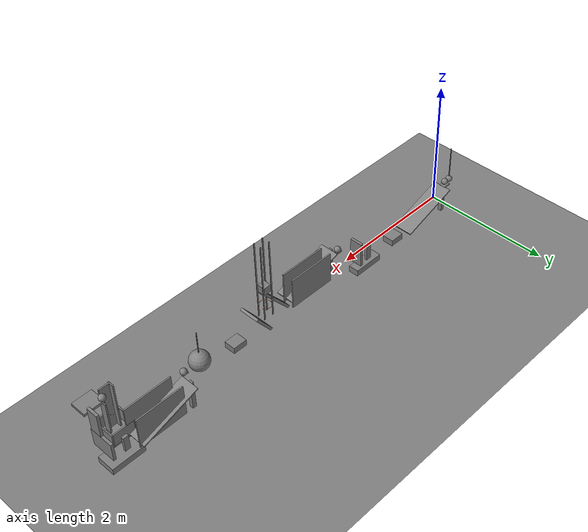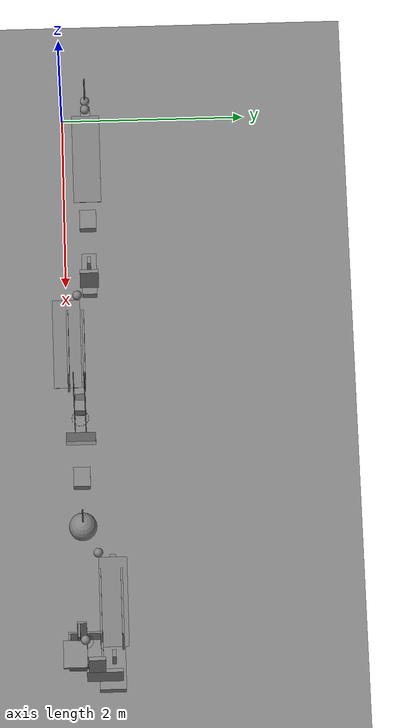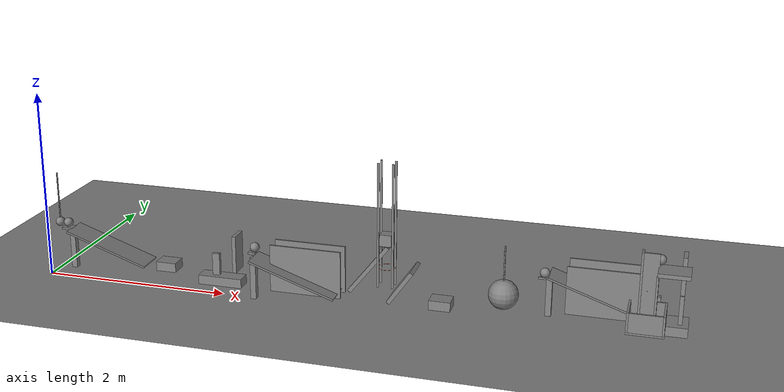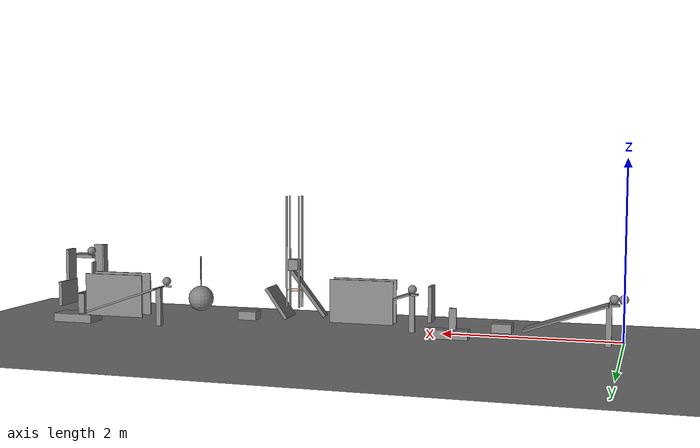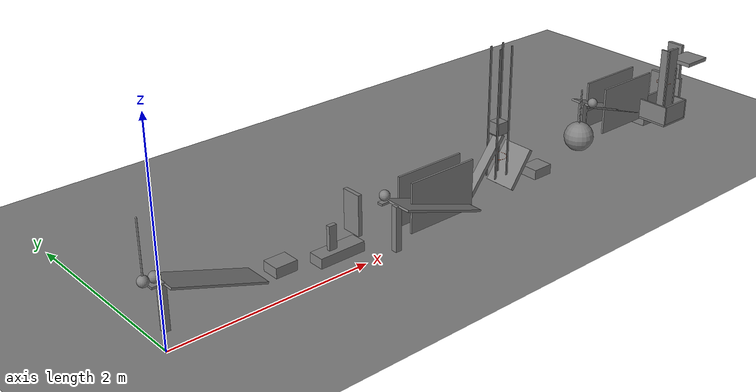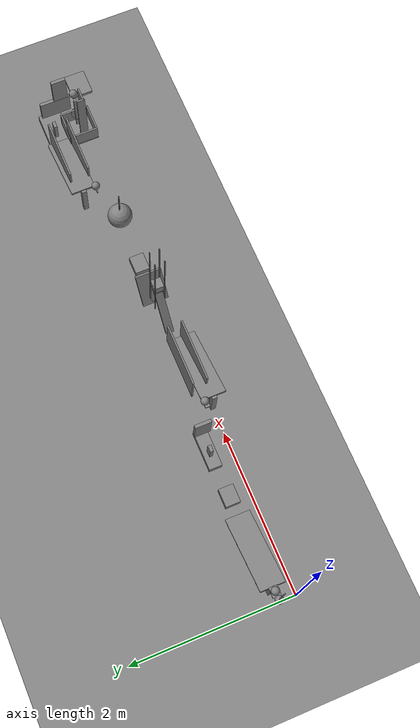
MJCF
<mujoco model="gravity_relay_with_guided_transfers">
  <compiler angle="radian"/>
  <option timestep="0.002"/>
  <worldbody>
    <geom name="floor" type="plane" size="20 20 0.1" friction="0.68 0 0"/>
    <body name="ramp1">
      <geom name="ramp1_deck" type="box" pos="0.59912 0.26 0.29519" size="0.474999 0.15 0.01" euler="0 0.331614 0" friction="0.68 0 0" solref="0.01 1"/>
      <geom name="ramp1_leg" type="box" pos="0.15 0.26 0.224917" size="0.03 0.03 0.224917" friction="0.68 0 0" solref="0.01 1"/>
    </body>
    <body name="ball1 perch">
      <geom name="ball1 perch" type="box" pos="0.1 0.26 0.44929" size="0.06 0.05 0.01" friction="0.68 0 0" solref="0.01 1"/>
    </body>
    <body name="pendulum1" pos="0 0.26 1.05929">
      <joint name="pendulum1_hinge" type="hinge" pos="0 0 0" axis="0 1 0" limited="true" range="-1.13446 0.959931" damping="0.04"/>
      <geom name="pendulum1" type="sphere" pos="0 0 -0.55" size="0.05" mass="0.38" friction="0.68 0 0" solref="0.01 1"/>
      <geom name="pendulum1 rod" type="capsule" size="0.0075" fromto="0 0 0 0 0 -0.5" mass="0.02" contype="0" conaffinity="0"/>
    </body>
    <body name="ball1" pos="0.1 0.26 0.50929">
      <freejoint/>
      <geom name="ball1" type="sphere" pos="0 0 0" size="0.05" mass="0.2" condim="6" friction="0.68 0 0" solref="0.01 1"/>
    </body>
    <body name="cart1" pos="1.27824 0.26 100.15">
      <joint name="cart1_guide_hinge" type="hinge" pos="0 0 0" axis="0 1 0" limited="true" range="-0.00400002 0" damping="2000"/>
      <geom name="cart1" type="box" pos="0 0 -100" size="0.11 0.09 0.05" mass="0.5" friction="0.68 0 0" solref="0.01 1"/>
    </body>
    <body name="domino1 landing">
      <geom name="domino1 landing" type="box" pos="1.88824 0.26 0.05" size="0.24 0.08 0.05" friction="0.68 0 0" solref="0.01 1"/>
    </body>
    <body name="domino1" pos="1.82824 0.26 0.22">
      <freejoint/>
      <geom name="domino1" type="box" pos="0 0 0" size="0.04 0.02 0.12" mass="0.25" friction="0.68 0 0" solref="0.01 1"/>
    </body>
    <body name="flap1" pos="2.06824 0.26 0.18">
      <joint name="flap1_hinge" type="hinge" pos="0 0 0" axis="0 1 0" limited="true" range="0 1.13446" damping="0.04"/>
      <geom name="flap1" type="box" pos="0 0 0.2" size="0.2 0.1 0.02" euler="0 -1.5708 0" mass="0.3" friction="0.68 0 0" solref="0.01 1"/>
    </body>
    <body name="ball2 perch">
      <geom name="ball2 perch" type="box" pos="2.29324 0.115 0.44929" size="0.04 0.03 0.01" friction="0.68 0 0" solref="0.01 1"/>
    </body>
    <body name="ramp2">
      <geom name="ramp2_deck" type="box" pos="2.79736 0 0.29519" size="0.474999 0.15 0.01" euler="0 0.331614 0" friction="0.68 0 0" solref="0.01 1"/>
      <geom name="ramp2_leg" type="box" pos="2.34824 0 0.224917" size="0.03 0.03 0.224917" friction="0.68 0 0" solref="0.01 1"/>
    </body>
    <body name="ball2" pos="2.31824 0.125 0.50929">
      <freejoint/>
      <geom name="ball2" type="sphere" pos="0 0 0" size="0.05" mass="0.2" condim="6" friction="0.68 0 0" solref="0.01 1"/>
    </body>
    <body name="ramp2 right guide">
      <geom name="ramp2 right guide" type="box" pos="2.90236 0.01 0.35" size="0.37412 0.01 0.25" friction="0.68 0 0" solref="0.01 1"/>
    </body>
    <body name="ramp2 left guide">
      <geom name="ramp2 left guide" type="box" pos="2.90236 0.18 0.35" size="0.37412 0.01 0.25" friction="0.68 0 0" solref="0.01 1"/>
    </body>
    <body name="seesaw1" pos="3.54657 0.125 0.416104">
      <joint name="seesaw1_hinge" type="hinge" pos="0 0 0" axis="0 1 0" limited="true" range="-0.698132 0" damping="0.04"/>
      <geom name="seesaw1" type="box" pos="0 0 -5e-07" size="0.325 0.05 0.02" euler="0 -0.907571 0" mass="0.549" friction="0.68 0 0" solref="0.01 1"/>
      <geom name="seesaw1 carrier" type="box" pos="0.18009 0 0.269896" size="0.065 0.05 0.004" mass="0.001" friction="0.68 0 0" solref="0.01 1"/>
    </body>
    <body name="block1" pos="3.72666 0.125 0.75">
      <freejoint/>
      <geom name="block1" type="box" pos="0 0 0" size="0.06 0.06 0.06" mass="0.35" friction="0.68 0 0" solref="0.01 1"/>
    </body>
    <body name="block1 near right guide">
      <geom name="block1 near right guide" type="box" pos="3.65166 0.067 0.9" size="0.01 0.004 0.65" friction="0.68 0 0" solref="0.01 1"/>
    </body>
    <body name="block1 near left guide">
      <geom name="block1 near left guide" type="box" pos="3.65166 0.183 0.9" size="0.01 0.004 0.65" friction="0.68 0 0" solref="0.01 1"/>
    </body>
    <body name="block1 far right guide">
      <geom name="block1 far right guide" type="box" pos="3.80166 0.067 0.9" size="0.01 0.004 0.65" friction="0.68 0 0" solref="0.01 1"/>
    </body>
    <body name="block1 far left guide">
      <geom name="block1 far left guide" type="box" pos="3.80166 0.183 0.9" size="0.01 0.004 0.65" friction="0.68 0 0" solref="0.01 1"/>
    </body>
    <body name="ring1">
      <geom name="ring1_00" type="capsule" size="0.001" fromto="3.81766 0.125 0.45 3.81073 0.159824 0.45" friction="0.68 0 0" solref="0.01 1" rgba="0.9 0.3 0.05 1"/>
      <geom name="ring1_01" type="capsule" size="0.001" fromto="3.81073 0.159824 0.45 3.79101 0.189347 0.45" friction="0.68 0 0" solref="0.01 1" rgba="0.9 0.3 0.05 1"/>
      <geom name="ring1_02" type="capsule" size="0.001" fromto="3.79101 0.189347 0.45 3.76148 0.209073 0.45" friction="0.68 0 0" solref="0.01 1" rgba="0.9 0.3 0.05 1"/>
      <geom name="ring1_03" type="capsule" size="0.001" fromto="3.76148 0.209073 0.45 3.72666 0.216 0.45" friction="0.68 0 0" solref="0.01 1" rgba="0.9 0.3 0.05 1"/>
      <geom name="ring1_04" type="capsule" size="0.001" fromto="3.72666 0.216 0.45 3.69184 0.209073 0.45" friction="0.68 0 0" solref="0.01 1" rgba="0.9 0.3 0.05 1"/>
      <geom name="ring1_05" type="capsule" size="0.001" fromto="3.69184 0.209073 0.45 3.66231 0.189347 0.45" friction="0.68 0 0" solref="0.01 1" rgba="0.9 0.3 0.05 1"/>
      <geom name="ring1_06" type="capsule" size="0.001" fromto="3.66231 0.189347 0.45 3.64259 0.159824 0.45" friction="0.68 0 0" solref="0.01 1" rgba="0.9 0.3 0.05 1"/>
      <geom name="ring1_07" type="capsule" size="0.001" fromto="3.64259 0.159824 0.45 3.63566 0.125 0.45" friction="0.68 0 0" solref="0.01 1" rgba="0.9 0.3 0.05 1"/>
      <geom name="ring1_08" type="capsule" size="0.001" fromto="3.63566 0.125 0.45 3.64259 0.0901758 0.45" friction="0.68 0 0" solref="0.01 1" rgba="0.9 0.3 0.05 1"/>
      <geom name="ring1_09" type="capsule" size="0.001" fromto="3.64259 0.0901758 0.45 3.66231 0.0606533 0.45" friction="0.68 0 0" solref="0.01 1" rgba="0.9 0.3 0.05 1"/>
      <geom name="ring1_10" type="capsule" size="0.001" fromto="3.66231 0.0606533 0.45 3.69184 0.040927 0.45" friction="0.68 0 0" solref="0.01 1" rgba="0.9 0.3 0.05 1"/>
      <geom name="ring1_11" type="capsule" size="0.001" fromto="3.69184 0.040927 0.45 3.72666 0.034 0.45" friction="0.68 0 0" solref="0.01 1" rgba="0.9 0.3 0.05 1"/>
      <geom name="ring1_12" type="capsule" size="0.001" fromto="3.72666 0.034 0.45 3.76148 0.040927 0.45" friction="0.68 0 0" solref="0.01 1" rgba="0.9 0.3 0.05 1"/>
      <geom name="ring1_13" type="capsule" size="0.001" fromto="3.76148 0.040927 0.45 3.79101 0.0606533 0.45" friction="0.68 0 0" solref="0.01 1" rgba="0.9 0.3 0.05 1"/>
      <geom name="ring1_14" type="capsule" size="0.001" fromto="3.79101 0.0606533 0.45 3.81073 0.0901758 0.45" friction="0.68 0 0" solref="0.01 1" rgba="0.9 0.3 0.05 1"/>
      <geom name="ring1_15" type="capsule" size="0.001" fromto="3.81073 0.0901758 0.45 3.81766 0.125 0.45" friction="0.68 0 0" solref="0.01 1" rgba="0.9 0.3 0.05 1"/>
    </body>
    <body name="door1" pos="4.02256 0.125 0.47253">
      <joint name="door1_hinge" type="hinge" pos="0 0 0" axis="0 1 0" limited="true" range="-1.22173 0" stiffness="0.04" springref="13.9626" damping="0.04"/>
      <geom name="door1" type="box" pos="-0.12045 0 -0.172022" size="0.209999 0.16 0.02" euler="0 2.18166 0" mass="0.45" friction="0.68 0 0" solref="0.01 1"/>
    </body>
    <body name="cart2" pos="4.29256 0.125 100.13">
      <joint name="cart2_guide_hinge" type="hinge" pos="0 0 0" axis="0 1 0" limited="true" range="-0.00420001 0" damping="2000"/>
      <geom name="cart2" type="box" pos="0 0 -100" size="0.11 0.09 0.05" mass="0.5" friction="0.68 0 0" solref="0.01 1"/>
    </body>
    <body name="pendulum2" pos="4.91256 0.125 0.8">
      <joint name="pendulum2_hinge" type="hinge" pos="0 0 0" axis="0 1 0" limited="true" range="-0.663225 0" damping="0.04"/>
      <geom name="pendulum2" type="sphere" pos="0 0 -0.5" size="0.15" mass="0.33" friction="0.68 0 0" solref="0.01 1"/>
      <geom name="pendulum2 rod" type="capsule" size="0.0075" fromto="0 0 0 0 0 -0.35" mass="0.02" contype="0" conaffinity="0"/>
    </body>
    <body name="ball3 perch">
      <geom name="ball3 perch" type="box" pos="5.26456 0.284 0.44929" size="0.04 0.005 0.01" friction="0.68 0 0" solref="0.01 1"/>
    </body>
    <body name="ramp3">
      <geom name="ramp3_deck" type="box" pos="5.76868 0.43 0.29519" size="0.474999 0.15 0.01" euler="0 0.331614 0" friction="0.68 0 0" solref="0.01 1"/>
      <geom name="ramp3_leg" type="box" pos="5.31956 0.43 0.224917" size="0.03 0.03 0.224917" friction="0.68 0 0" solref="0.01 1"/>
    </body>
    <body name="ball3" pos="5.28956 0.28 0.50929">
      <freejoint/>
      <geom name="ball3" type="sphere" pos="0 0 0" size="0.05" mass="0.2" condim="6" friction="0.68 0 0" solref="0.01 1"/>
    </body>
    <body name="ramp3 right guide">
      <geom name="ramp3 right guide" type="box" pos="5.86868 0.29 0.35" size="0.36912 0.01 0.25" friction="0.68 0 0" solref="0.01 1"/>
    </body>
    <body name="ramp3 left guide">
      <geom name="ramp3 left guide" type="box" pos="5.86868 0.52 0.35" size="0.36912 0.01 0.25" friction="0.68 0 0" solref="0.01 1"/>
    </body>
    <body name="domino2 landing">
      <geom name="domino2 landing" type="box" pos="6.4278 0.4 0.05" size="0.25 0.14 0.05" friction="0.68 0 0" solref="0.01 1"/>
    </body>
    <body name="domino2" pos="6.3578 0.42 0.22">
      <freejoint/>
      <geom name="domino2" type="box" pos="0 0 0" size="0.04 0.02 0.12" mass="0.25" friction="0.68 0 0" solref="0.01 1"/>
    </body>
    <body name="flap2" pos="6.5978 0.24 0.48">
      <joint name="flap2_hinge" type="hinge" pos="0 0 0" axis="0 1 0" limited="true" range="-1.0472 0" damping="0.04"/>
      <geom name="flap2" type="box" pos="0 0 0.19" size="0.19 0.09 0.02" euler="0 -1.5708 0" mass="0.27" friction="0.68 0 0" solref="0.01 1"/>
      <geom name="flap2 trigger" type="box" pos="0 0.08 -0.145" size="0.145 0.19 0.02" euler="0 -1.5708 0" mass="0.01" friction="0.68 0 0" solref="0.01 1"/>
    </body>
    <body name="shelf1">
      <geom name="shelf1" type="box" pos="6.5128 0.015 0.76" size="0.15 0.125 0.02" friction="0.68 0 0" solref="0.01 1"/>
    </body>
    <body name="ball4" pos="6.3778 0.125 0.83">
      <freejoint/>
      <geom name="ball4" type="sphere" pos="0 0 0" size="0.05" mass="0.2" condim="6" friction="0.68 0 0" solref="0.01 1"/>
    </body>
    <body name="ring2">
      <geom name="ring2_00" type="capsule" size="0.001" fromto="6.3688 0.125 0.53 6.36263 0.155997 0.53" friction="0.68 0 0" solref="0.01 1" rgba="0.9 0.3 0.05 1"/>
      <geom name="ring2_01" type="capsule" size="0.001" fromto="6.36263 0.155997 0.53 6.34508 0.182276 0.53" friction="0.68 0 0" solref="0.01 1" rgba="0.9 0.3 0.05 1"/>
      <geom name="ring2_02" type="capsule" size="0.001" fromto="6.34508 0.182276 0.53 6.3188 0.199834 0.53" friction="0.68 0 0" solref="0.01 1" rgba="0.9 0.3 0.05 1"/>
      <geom name="ring2_03" type="capsule" size="0.001" fromto="6.3188 0.199834 0.53 6.2878 0.206 0.53" friction="0.68 0 0" solref="0.01 1" rgba="0.9 0.3 0.05 1"/>
      <geom name="ring2_04" type="capsule" size="0.001" fromto="6.2878 0.206 0.53 6.2568 0.199834 0.53" friction="0.68 0 0" solref="0.01 1" rgba="0.9 0.3 0.05 1"/>
      <geom name="ring2_05" type="capsule" size="0.001" fromto="6.2568 0.199834 0.53 6.23052 0.182276 0.53" friction="0.68 0 0" solref="0.01 1" rgba="0.9 0.3 0.05 1"/>
      <geom name="ring2_06" type="capsule" size="0.001" fromto="6.23052 0.182276 0.53 6.21297 0.155997 0.53" friction="0.68 0 0" solref="0.01 1" rgba="0.9 0.3 0.05 1"/>
      <geom name="ring2_07" type="capsule" size="0.001" fromto="6.21297 0.155997 0.53 6.2068 0.125 0.53" friction="0.68 0 0" solref="0.01 1" rgba="0.9 0.3 0.05 1"/>
      <geom name="ring2_08" type="capsule" size="0.001" fromto="6.2068 0.125 0.53 6.21297 0.0940026 0.53" friction="0.68 0 0" solref="0.01 1" rgba="0.9 0.3 0.05 1"/>
      <geom name="ring2_09" type="capsule" size="0.001" fromto="6.21297 0.0940026 0.53 6.23052 0.0677244 0.53" friction="0.68 0 0" solref="0.01 1" rgba="0.9 0.3 0.05 1"/>
      <geom name="ring2_10" type="capsule" size="0.001" fromto="6.23052 0.0677244 0.53 6.2568 0.0501658 0.53" friction="0.68 0 0" solref="0.01 1" rgba="0.9 0.3 0.05 1"/>
      <geom name="ring2_11" type="capsule" size="0.001" fromto="6.2568 0.0501658 0.53 6.2878 0.044 0.53" friction="0.68 0 0" solref="0.01 1" rgba="0.9 0.3 0.05 1"/>
      <geom name="ring2_12" type="capsule" size="0.001" fromto="6.2878 0.044 0.53 6.3188 0.0501658 0.53" friction="0.68 0 0" solref="0.01 1" rgba="0.9 0.3 0.05 1"/>
      <geom name="ring2_13" type="capsule" size="0.001" fromto="6.3188 0.0501658 0.53 6.34508 0.0677244 0.53" friction="0.68 0 0" solref="0.01 1" rgba="0.9 0.3 0.05 1"/>
      <geom name="ring2_14" type="capsule" size="0.001" fromto="6.34508 0.0677244 0.53 6.36263 0.0940026 0.53" friction="0.68 0 0" solref="0.01 1" rgba="0.9 0.3 0.05 1"/>
      <geom name="ring2_15" type="capsule" size="0.001" fromto="6.36263 0.0940026 0.53 6.3688 0.125 0.53" friction="0.68 0 0" solref="0.01 1" rgba="0.9 0.3 0.05 1"/>
    </body>
    <body name="ball4 forward catch">
      <geom name="ball4 forward catch" type="box" pos="6.2128 0.09 0.54" size="0.01 0.05 0.37" friction="0.68 0 0" solref="0.01 1"/>
    </body>
    <body name="ball4 rear guide">
      <geom name="ball4 rear guide" type="box" pos="6.3628 0.09 0.43" size="0.01 0.05 0.26" friction="0.68 0 0" solref="0.01 1"/>
    </body>
    <body name="ball4 right guide">
      <geom name="ball4 right guide" type="box" pos="6.2878 0.06 0.54" size="0.085 0.01 0.37" friction="0.68 0 0" solref="0.01 1"/>
    </body>
    <body name="box1">
      <geom name="box1_base" type="box" pos="6.2878 0.125 0.12" size="0.18 0.18 0.01" friction="0.68 0 0" solref="0.01 1"/>
      <geom name="box1_near_wall" type="box" pos="6.1178 0.125 0.23" size="0.01 0.18 0.1" friction="0.68 0 0" solref="0.01 1"/>
      <geom name="box1_far_wall" type="box" pos="6.4578 0.125 0.23" size="0.01 0.18 0.1" friction="0.68 0 0" solref="0.01 1"/>
      <geom name="box1_left_wall" type="box" pos="6.2878 0.295 0.23" size="0.16 0.01 0.1" friction="0.68 0 0" solref="0.01 1"/>
      <geom name="box1_right_wall" type="box" pos="6.2878 -0.045 0.23" size="0.16 0.01 0.1" friction="0.68 0 0" solref="0.01 1"/>
    </body>
  </worldbody>
  <keyframe>
    <key name="start" qpos="0.959931 0.1 0.26 0.50929 1 0 0 0 0 1.82824 0.26 0.22 1 0 0 0 0 2.31824 0.125 0.50929 1 0 0 0 0 3.72666 0.125 0.75 1 0 0 0 0 0 0 5.28956 0.28 0.50929 1 0 0 0 6.3578 0.42 0.22 1 0 0 0 0 6.3778 0.125 0.83 1 0 0 0" qvel="0 0 0 0 0 0 0 0 0 0 0 0 0 0 0 0 0 0 0 0 0 0 0 0 0 0 0 0 0 0 0 0 0 0 0 0 0 0 0 0 0 0 0 0 0 0 0 0 0 0"/>
  </keyframe>
</mujoco>
